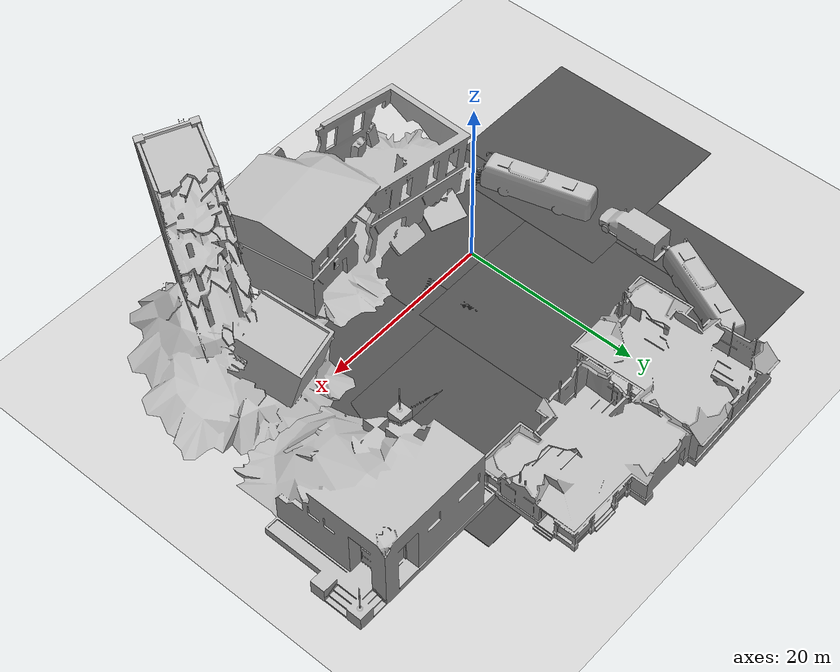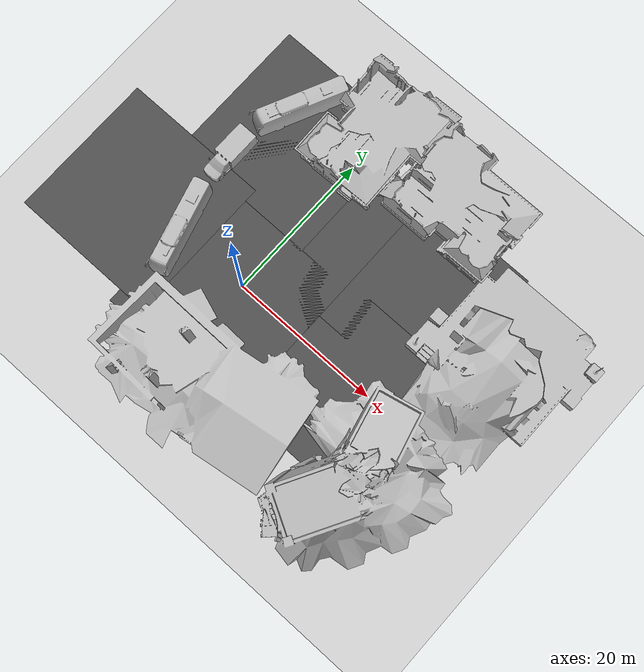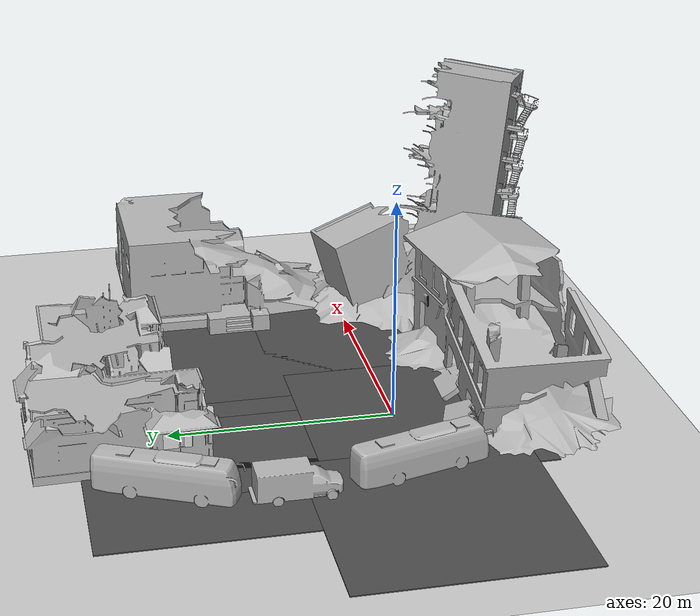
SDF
<sdf version="1.6">
 <world name="default">
  <light name="sun" type="directional">
   <pose>0 0 15 0 -0 0</pose>
   <diffuse>0.8 0.8 0.8 1</diffuse>
   <specular>0.2 0.2 0.2 1</specular>
   <attenuation>
    <range>1000</range>
    <constant>0.9</constant>
    <linear>0.01</linear>
    <quadratic>0.001</quadratic>
   </attenuation>
   <direction>-0.5 0.1 -0.9</direction>
  </light>
  <model name="ground_plane">
   <static>1</static>
   <link name="link">
    <collision name="collision">
     <geometry><plane><normal>0 0 1</normal><size>100 100</size></plane></geometry>
     <surface><friction><ode><mu>100</mu><mu2>50</mu2></ode></friction></surface>
    </collision>
    <visual name="visual">
     <transparency>1</transparency>
     <cast_shadows>0</cast_shadows>
     <geometry><plane><normal>0 0 1</normal><size>100 100</size></plane></geometry>
     <material>
      <script><uri>file://media/materials/scripts/gazebo.material</uri><name>Gazebo/Grey</name></script>
     </material>
    </visual>
   </link>
  </model>
  <gravity>0 0 -9.8</gravity>
  <magnetic_field>6e-06 2.3e-05 -4.2e-05</magnetic_field>
  <atmosphere type="adiabatic"/>
  <physics name="default_physics" default="0" type="ode">
   <max_step_size>0.001</max_step_size>
   <real_time_factor>1</real_time_factor>
   <real_time_update_rate>1000</real_time_update_rate>
  </physics>
  <scene><ambient>0.4 0.4 0.4 1</ambient><background>0.7 0.7 0.7 1</background><shadows>1</shadows></scene>
  <audio><device>default</device></audio>
  <spherical_coordinates>
   <surface_model>EARTH_WGS84</surface_model>
   <latitude_deg>0</latitude_deg>
   <longitude_deg>0</longitude_deg>
   <elevation>0</elevation>
   <heading_deg>0</heading_deg>
  </spherical_coordinates>
  <model name="asphalt_plane">
   <static>1</static>
   <link name="link">
    <collision name="collision"><geometry><box><size>20 20 0.1</size></box></geometry></collision>
    <visual name="visual">
     <cast_shadows>0</cast_shadows>
     <geometry><box><size>20 20 0.1</size></box></geometry>
     <material>
      <script>
       <uri>model://asphalt_plane/materials/scripts</uri>
       <uri>model://asphalt_plane/materials/textures</uri>
       <name>vrc/asphalt</name>
      </script>
     </material>
    </visual>
   </link>
   <pose>-0.689731 -1.88802 0 0 -0 0</pose>
  </model>
  <model name="bus">
   <static>1</static>
   <link name="link">
    <collision name="collision">
     <geometry><mesh><scale>0.01 0.01 0.01</scale><uri>model://bus/meshes/bus.obj</uri></mesh></geometry>
    </collision>
    <visual name="visual">
     <geometry><mesh><scale>0.01 0.01 0.01</scale><uri>model://bus/meshes/bus.obj</uri></mesh></geometry>
    </visual>
   </link>
   <pose>-10.1588 0.16114 0 0 -0 0.272263</pose>
  </model>
  <model name="bus_0">
   <static>1</static>
   <link name="link">
    <collision name="collision">
     <geometry><mesh><scale>0.01 0.01 0.01</scale><uri>model://bus/meshes/bus.obj</uri></mesh></geometry>
    </collision>
    <visual name="visual">
     <geometry><mesh><scale>0.01 0.01 0.01</scale><uri>model://bus/meshes/bus.obj</uri></mesh></geometry>
    </visual>
   </link>
   <pose>-9.73056 21.2127 0 0 0 -0.436123</pose>
  </model>
  <model name="asphalt_plane_0">
   <static>1</static>
   <link name="link">
    <collision name="collision"><geometry><box><size>20 20 0.1</size></box></geometry></collision>
    <visual name="visual">
     <cast_shadows>0</cast_shadows>
     <geometry><box><size>20 20 0.1</size></box></geometry>
     <material>
      <script>
       <uri>model://asphalt_plane/materials/scripts</uri>
       <uri>model://asphalt_plane/materials/textures</uri>
       <name>vrc/asphalt</name>
      </script>
     </material>
    </visual>
   </link>
   <pose>-16.9161 -0.070249 0 0 -0 0</pose>
  </model>
  <model name="collapsed_fire_station">
   <static>1</static>
   <link name="link">
    <collision name="collision">
     <geometry><mesh><uri>model://collapsed_fire_station/meshes/collapsed_fire_station.dae</uri></mesh></geometry>
    </collision>
    <visual name="visual">
     <geometry><mesh><uri>model://collapsed_fire_station/meshes/collapsed_fire_station.dae</uri></mesh></geometry>
    </visual>
   </link>
   <pose>3.64832 -11.661 0 0 0 -2.99354</pose>
  </model>
  <model name="asphalt_plane_2">
   <static>1</static>
   <link name="link">
    <collision name="collision"><geometry><box><size>20 20 0.1</size></box></geometry></collision>
    <visual name="visual">
     <cast_shadows>0</cast_shadows>
     <geometry><box><size>20 20 0.1</size></box></geometry>
     <material>
      <script>
       <uri>model://asphalt_plane/materials/scripts</uri>
       <uri>model://asphalt_plane/materials/textures</uri>
       <name>vrc/asphalt</name>
      </script>
     </material>
    </visual>
   </link>
   <pose>-0.660423 11.3059 0 0 -0 0</pose>
  </model>
  <model name="asphalt_plane_3">
   <static>1</static>
   <link name="link">
    <collision name="collision"><geometry><box><size>20 20 0.1</size></box></geometry></collision>
    <visual name="visual">
     <cast_shadows>0</cast_shadows>
     <geometry><box><size>20 20 0.1</size></box></geometry>
     <material>
      <script>
       <uri>model://asphalt_plane/materials/scripts</uri>
       <uri>model://asphalt_plane/materials/textures</uri>
       <name>vrc/asphalt</name>
      </script>
     </material>
    </visual>
   </link>
   <pose>15.2217 13.4794 0 0 -0 0</pose>
  </model>
  <model name="collapsed_police_station">
   <static>1</static>
   <link name="link">
    <collision name="collision">
     <geometry>
      <mesh><uri>model://collapsed_police_station/meshes/collapsed_police_station.dae</uri></mesh>
     </geometry>
    </collision>
    <visual name="visual">
     <geometry>
      <mesh><uri>model://collapsed_police_station/meshes/collapsed_police_station.dae</uri></mesh>
     </geometry>
    </visual>
   </link>
   <pose>29.0623 9.61085 0 0 -0 0</pose>
  </model>
  <model name="collapsed_industrial">
   <static>1</static>
   <link name="link">
    <collision name="collision">
     <geometry><mesh><uri>model://collapsed_industrial/meshes/collapsed_industrial.dae</uri></mesh></geometry>
    </collision>
    <visual name="visual">
     <geometry><mesh><uri>model://collapsed_industrial/meshes/collapsed_industrial.dae</uri></mesh></geometry>
    </visual>
   </link>
   <pose>25.3333 -9.21541 0 0 -0 1.06789</pose>
  </model>
  <model name="collapsed_house">
   <static>1</static>
   <link name="link">
    <collision name="collision">
     <geometry>
      <mesh><scale>1.5 1.5 1.5</scale><uri>model://collapsed_house/meshes/collapsed_house.dae</uri></mesh>
     </geometry>
    </collision>
    <visual name="visual">
     <geometry>
      <mesh><scale>1.5 1.5 1.5</scale><uri>model://collapsed_house/meshes/collapsed_house.dae</uri></mesh>
     </geometry>
    </visual>
   </link>
   <pose>13.2075 24.9365 0 0 -0 0</pose>
  </model>
  <model name="collapsed_house_0">
   <static>1</static>
   <link name="link">
    <collision name="collision">
     <geometry>
      <mesh><scale>1.5 1.5 1.5</scale><uri>model://collapsed_house/meshes/collapsed_house.dae</uri></mesh>
     </geometry>
    </collision>
    <visual name="visual">
     <geometry>
      <mesh><scale>1.5 1.5 1.5</scale><uri>model://collapsed_house/meshes/collapsed_house.dae</uri></mesh>
     </geometry>
    </visual>
   </link>
   <pose>0.093889 24.3823 0 0 0 -1.54221</pose>
  </model>
  <model name="asphalt_plane_3_clone">
   <static>1</static>
   <link name="link">
    <collision name="collision"><geometry><box><size>20 20 0.1</size></box></geometry></collision>
    <visual name="visual">
     <cast_shadows>0</cast_shadows>
     <geometry><box><size>20 20 0.1</size></box></geometry>
     <material>
      <script>
       <uri>model://asphalt_plane/materials/scripts</uri>
       <uri>model://asphalt_plane/materials/textures</uri>
       <name>vrc/asphalt</name>
      </script>
     </material>
    </visual>
   </link>
   <pose>15.1437 -0.978811 0 0 -0 0</pose>
  </model>
  <model name="ambulance">
   <static>1</static>
   <link name="link">
    <collision name="collision">
     <geometry>
      <mesh><scale>0.0254 0.0254 0.0254</scale><uri>model://ambulance/meshes/ambulance.obj</uri></mesh>
     </geometry>
    </collision>
    <visual name="visual">
     <geometry>
      <mesh><scale>0.0254 0.0254 0.0254</scale><uri>model://ambulance/meshes/ambulance.obj</uri></mesh>
     </geometry>
    </visual>
   </link>
   <pose>-12.0872 11.1068 0 0 -0 0</pose>
  </model>
  <model name="asphalt_plane_2_clone">
   <static>1</static>
   <link name="link">
    <collision name="collision"><geometry><box><size>20 20 0.1</size></box></geometry></collision>
    <visual name="visual">
     <cast_shadows>0</cast_shadows>
     <geometry><box><size>20 20 0.1</size></box></geometry>
     <material>
      <script>
       <uri>model://asphalt_plane/materials/scripts</uri>
       <uri>model://asphalt_plane/materials/textures</uri>
       <name>vrc/asphalt</name>
      </script>
     </material>
    </visual>
   </link>
   <pose>-7.60923 17.8961 0 0 -0 0</pose>
  </model>
 </world>
</sdf>
